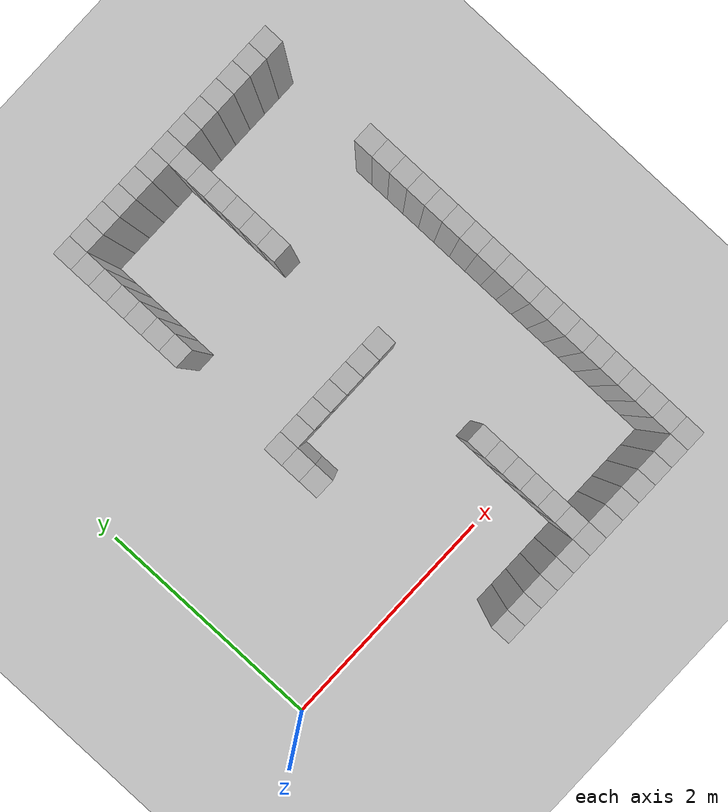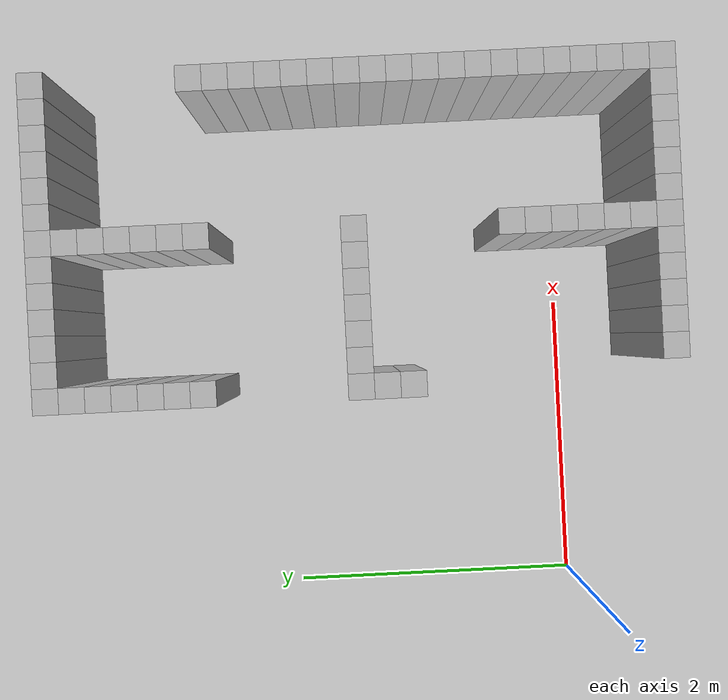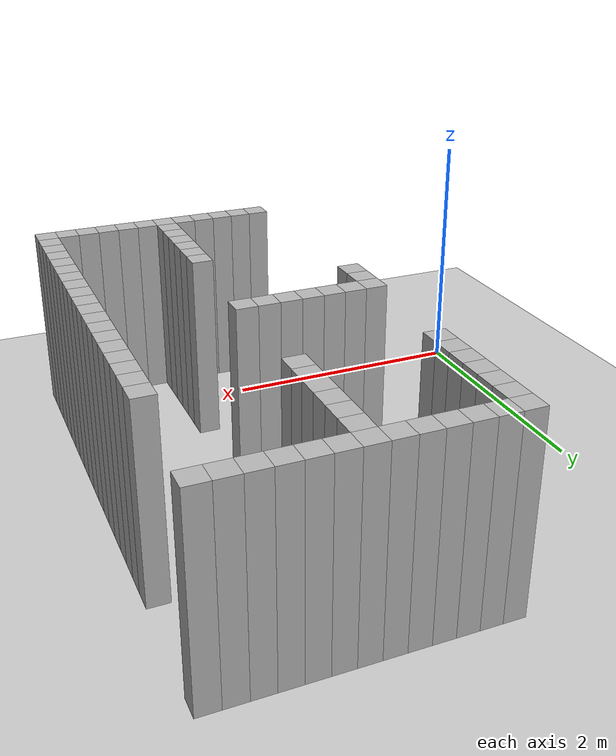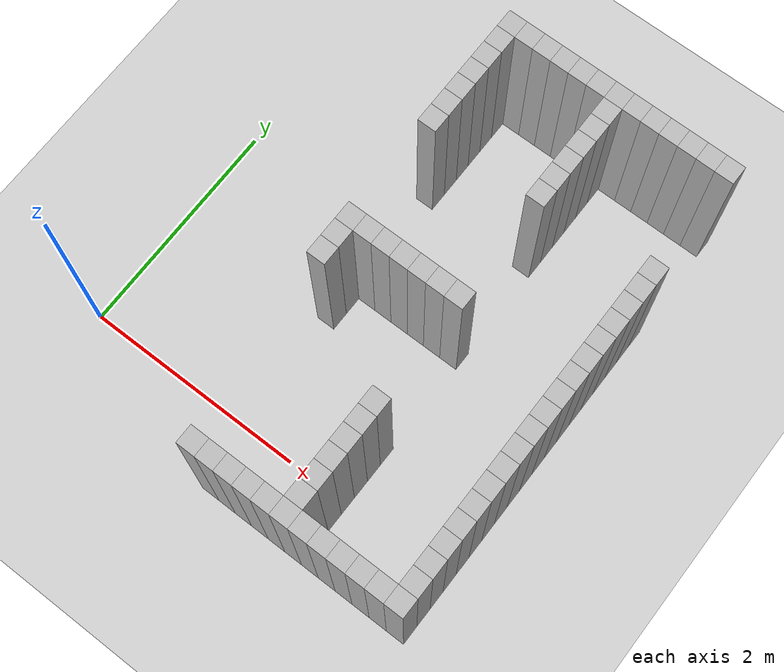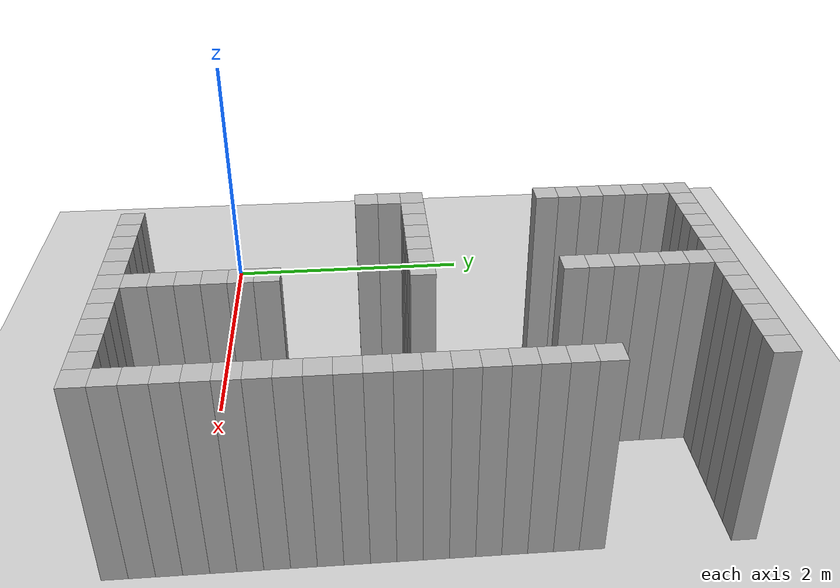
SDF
<sdf version="1.6">
 <world name="default">
  <include><uri>model://sun</uri></include>
  <include><uri>model://ground_plane</uri></include>
  <model name="Maze">
   <pose>-0.75 -0.75 0 0 0 0 0</pose>
   <link name="link_70">
    <pose>2.25 1.9166666666666665 0.75 0 0 0 0</pose>
    <inertial><mass>1</mass></inertial>
    <collision name="collision_70">
     <geometry><box><size>0.16666666666666666 0.16666666666666666 1.5</size></box></geometry>
    </collision>
    <visual name="visual_70">
     <geometry><box><size>0.16666666666666666 0.16666666666666666 1.5</size></box></geometry>
    </visual>
   </link>
   <link name="link_71">
    <pose>2.25 2.0833333333333335 0.75 0 0 0 0</pose>
    <inertial><mass>1</mass></inertial>
    <collision name="collision_71">
     <geometry><box><size>0.16666666666666666 0.16666666666666666 1.5</size></box></geometry>
    </collision>
    <visual name="visual_71">
     <geometry><box><size>0.16666666666666666 0.16666666666666666 1.5</size></box></geometry>
    </visual>
   </link>
   <link name="link_72">
    <pose>2.25 2.25 0.75 0 0 0 0</pose>
    <inertial><mass>1</mass></inertial>
    <collision name="collision_72">
     <geometry><box><size>0.16666666666666666 0.16666666666666666 1.5</size></box></geometry>
    </collision>
    <visual name="visual_72">
     <geometry><box><size>0.16666666666666666 0.16666666666666666 1.5</size></box></geometry>
    </visual>
   </link>
   <link name="link_73">
    <pose>2.25 3.25 0.75 0 0 0 0</pose>
    <inertial><mass>1</mass></inertial>
    <collision name="collision_73">
     <geometry><box><size>0.16666666666666666 0.16666666666666666 1.5</size></box></geometry>
    </collision>
    <visual name="visual_73">
     <geometry><box><size>0.16666666666666666 0.16666666666666666 1.5</size></box></geometry>
    </visual>
   </link>
   <link name="link_74">
    <pose>2.25 3.4166666666666665 0.75 0 0 0 0</pose>
    <inertial><mass>1</mass></inertial>
    <collision name="collision_74">
     <geometry><box><size>0.16666666666666666 0.16666666666666666 1.5</size></box></geometry>
    </collision>
    <visual name="visual_74">
     <geometry><box><size>0.16666666666666666 0.16666666666666666 1.5</size></box></geometry>
    </visual>
   </link>
   <link name="link_75">
    <pose>2.25 3.5833333333333335 0.75 0 0 0 0</pose>
    <inertial><mass>1</mass></inertial>
    <collision name="collision_75">
     <geometry><box><size>0.16666666666666666 0.16666666666666666 1.5</size></box></geometry>
    </collision>
    <visual name="visual_75">
     <geometry><box><size>0.16666666666666666 0.16666666666666666 1.5</size></box></geometry>
    </visual>
   </link>
   <link name="link_76">
    <pose>2.25 3.75 0.75 0 0 0 0</pose>
    <inertial><mass>1</mass></inertial>
    <collision name="collision_76">
     <geometry><box><size>0.16666666666666666 0.16666666666666666 1.5</size></box></geometry>
    </collision>
    <visual name="visual_76">
     <geometry><box><size>0.16666666666666666 0.16666666666666666 1.5</size></box></geometry>
    </visual>
   </link>
   <link name="link_77">
    <pose>2.25 3.9166666666666665 0.75 0 0 0 0</pose>
    <inertial><mass>1</mass></inertial>
    <collision name="collision_77">
     <geometry><box><size>0.16666666666666666 0.16666666666666666 1.5</size></box></geometry>
    </collision>
    <visual name="visual_77">
     <geometry><box><size>0.16666666666666666 0.16666666666666666 1.5</size></box></geometry>
    </visual>
   </link>
   <link name="link_78">
    <pose>2.25 4.083333333333333 0.75 0 0 0 0</pose>
    <inertial><mass>1</mass></inertial>
    <collision name="collision_78">
     <geometry><box><size>0.16666666666666666 0.16666666666666666 1.5</size></box></geometry>
    </collision>
    <visual name="visual_78">
     <geometry><box><size>0.16666666666666666 0.16666666666666666 1.5</size></box></geometry>
    </visual>
   </link>
   <link name="link_79">
    <pose>2.25 4.249999999999999 0.75 0 0 0 0</pose>
    <inertial><mass>1</mass></inertial>
    <collision name="collision_79">
     <geometry><box><size>0.16666666666666666 0.16666666666666666 1.5</size></box></geometry>
    </collision>
    <visual name="visual_79">
     <geometry><box><size>0.16666666666666666 0.16666666666666666 1.5</size></box></geometry>
    </visual>
   </link>
   <link name="link_80">
    <pose>2.4166666666666665 0.25 0.75 0 0 0 0</pose>
    <inertial><mass>1</mass></inertial>
    <collision name="collision_80">
     <geometry><box><size>0.16666666666666666 0.16666666666666666 1.5</size></box></geometry>
    </collision>
    <visual name="visual_80">
     <geometry><box><size>0.16666666666666666 0.16666666666666666 1.5</size></box></geometry>
    </visual>
   </link>
   <link name="link_81">
    <pose>2.4166666666666665 2.25 0.75 0 0 0 0</pose>
    <inertial><mass>1</mass></inertial>
    <collision name="collision_81">
     <geometry><box><size>0.16666666666666666 0.16666666666666666 1.5</size></box></geometry>
    </collision>
    <visual name="visual_81">
     <geometry><box><size>0.16666666666666666 0.16666666666666666 1.5</size></box></geometry>
    </visual>
   </link>
   <link name="link_82">
    <pose>2.4166666666666665 4.249999999999999 0.75 0 0 0 0</pose>
    <inertial><mass>1</mass></inertial>
    <collision name="collision_82">
     <geometry><box><size>0.16666666666666666 0.16666666666666666 1.5</size></box></geometry>
    </collision>
    <visual name="visual_82">
     <geometry><box><size>0.16666666666666666 0.16666666666666666 1.5</size></box></geometry>
    </visual>
   </link>
   <link name="link_83">
    <pose>2.5833333333333335 0.25 0.75 0 0 0 0</pose>
    <inertial><mass>1</mass></inertial>
    <collision name="collision_83">
     <geometry><box><size>0.16666666666666666 0.16666666666666666 1.5</size></box></geometry>
    </collision>
    <visual name="visual_83">
     <geometry><box><size>0.16666666666666666 0.16666666666666666 1.5</size></box></geometry>
    </visual>
   </link>
   <link name="link_84">
    <pose>2.5833333333333335 2.25 0.75 0 0 0 0</pose>
    <inertial><mass>1</mass></inertial>
    <collision name="collision_84">
     <geometry><box><size>0.16666666666666666 0.16666666666666666 1.5</size></box></geometry>
    </collision>
    <visual name="visual_84">
     <geometry><box><size>0.16666666666666666 0.16666666666666666 1.5</size></box></geometry>
    </visual>
   </link>
   <link name="link_85">
    <pose>2.5833333333333335 4.249999999999999 0.75 0 0 0 0</pose>
    <inertial><mass>1</mass></inertial>
    <collision name="collision_85">
     <geometry><box><size>0.16666666666666666 0.16666666666666666 1.5</size></box></geometry>
    </collision>
    <visual name="visual_85">
     <geometry><box><size>0.16666666666666666 0.16666666666666666 1.5</size></box></geometry>
    </visual>
   </link>
   <link name="link_86">
    <pose>2.75 0.25 0.75 0 0 0 0</pose>
    <inertial><mass>1</mass></inertial>
    <collision name="collision_86">
     <geometry><box><size>0.16666666666666666 0.16666666666666666 1.5</size></box></geometry>
    </collision>
    <visual name="visual_86">
     <geometry><box><size>0.16666666666666666 0.16666666666666666 1.5</size></box></geometry>
    </visual>
   </link>
   <link name="link_87">
    <pose>2.75 2.25 0.75 0 0 0 0</pose>
    <inertial><mass>1</mass></inertial>
    <collision name="collision_87">
     <geometry><box><size>0.16666666666666666 0.16666666666666666 1.5</size></box></geometry>
    </collision>
    <visual name="visual_87">
     <geometry><box><size>0.16666666666666666 0.16666666666666666 1.5</size></box></geometry>
    </visual>
   </link>
   <link name="link_88">
    <pose>2.75 4.249999999999999 0.75 0 0 0 0</pose>
    <inertial><mass>1</mass></inertial>
    <collision name="collision_88">
     <geometry><box><size>0.16666666666666666 0.16666666666666666 1.5</size></box></geometry>
    </collision>
    <visual name="visual_88">
     <geometry><box><size>0.16666666666666666 0.16666666666666666 1.5</size></box></geometry>
    </visual>
   </link>
   <link name="link_89">
    <pose>2.9166666666666665 0.25 0.75 0 0 0 0</pose>
    <inertial><mass>1</mass></inertial>
    <collision name="collision_89">
     <geometry><box><size>0.16666666666666666 0.16666666666666666 1.5</size></box></geometry>
    </collision>
    <visual name="visual_89">
     <geometry><box><size>0.16666666666666666 0.16666666666666666 1.5</size></box></geometry>
    </visual>
   </link>
   <link name="link_90">
    <pose>2.9166666666666665 2.25 0.75 0 0 0 0</pose>
    <inertial><mass>1</mass></inertial>
    <collision name="collision_90">
     <geometry><box><size>0.16666666666666666 0.16666666666666666 1.5</size></box></geometry>
    </collision>
    <visual name="visual_90">
     <geometry><box><size>0.16666666666666666 0.16666666666666666 1.5</size></box></geometry>
    </visual>
   </link>
   <link name="link_91">
    <pose>2.9166666666666665 4.249999999999999 0.75 0 0 0 0</pose>
    <inertial><mass>1</mass></inertial>
    <collision name="collision_91">
     <geometry><box><size>0.16666666666666666 0.16666666666666666 1.5</size></box></geometry>
    </collision>
    <visual name="visual_91">
     <geometry><box><size>0.16666666666666666 0.16666666666666666 1.5</size></box></geometry>
    </visual>
   </link>
   <link name="link_92">
    <pose>3.0833333333333335 0.25 0.75 0 0 0 0</pose>
    <inertial><mass>1</mass></inertial>
    <collision name="collision_92">
     <geometry><box><size>0.16666666666666666 0.16666666666666666 1.5</size></box></geometry>
    </collision>
    <visual name="visual_92">
     <geometry><box><size>0.16666666666666666 0.16666666666666666 1.5</size></box></geometry>
    </visual>
   </link>
   <link name="link_93">
    <pose>3.0833333333333335 2.25 0.75 0 0 0 0</pose>
    <inertial><mass>1</mass></inertial>
    <collision name="collision_93">
     <geometry><box><size>0.16666666666666666 0.16666666666666666 1.5</size></box></geometry>
    </collision>
    <visual name="visual_93">
     <geometry><box><size>0.16666666666666666 0.16666666666666666 1.5</size></box></geometry>
    </visual>
   </link>
   <link name="link_94">
    <pose>3.0833333333333335 4.249999999999999 0.75 0 0 0 0</pose>
    <inertial><mass>1</mass></inertial>
    <collision name="collision_94">
     <geometry><box><size>0.16666666666666666 0.16666666666666666 1.5</size></box></geometry>
    </collision>
    <visual name="visual_94">
     <geometry><box><size>0.16666666666666666 0.16666666666666666 1.5</size></box></geometry>
    </visual>
   </link>
   <link name="link_95">
    <pose>3.25 0.25 0.75 0 0 0 0</pose>
    <inertial><mass>1</mass></inertial>
    <collision name="collision_95">
     <geometry><box><size>0.16666666666666666 0.16666666666666666 1.5</size></box></geometry>
    </collision>
    <visual name="visual_95">
     <geometry><box><size>0.16666666666666666 0.16666666666666666 1.5</size></box></geometry>
    </visual>
   </link>
   <link name="link_96">
    <pose>3.25 0.41666666666666663 0.75 0 0 0 0</pose>
    <inertial><mass>1</mass></inertial>
    <collision name="collision_96">
     <geometry><box><size>0.16666666666666666 0.16666666666666666 1.5</size></box></geometry>
    </collision>
    <visual name="visual_96">
     <geometry><box><size>0.16666666666666666 0.16666666666666666 1.5</size></box></geometry>
    </visual>
   </link>
   <link name="link_97">
    <pose>3.25 0.5833333333333334 0.75 0 0 0 0</pose>
    <inertial><mass>1</mass></inertial>
    <collision name="collision_97">
     <geometry><box><size>0.16666666666666666 0.16666666666666666 1.5</size></box></geometry>
    </collision>
    <visual name="visual_97">
     <geometry><box><size>0.16666666666666666 0.16666666666666666 1.5</size></box></geometry>
    </visual>
   </link>
   <link name="link_98">
    <pose>3.25 0.75 0.75 0 0 0 0</pose>
    <inertial><mass>1</mass></inertial>
    <collision name="collision_98">
     <geometry><box><size>0.16666666666666666 0.16666666666666666 1.5</size></box></geometry>
    </collision>
    <visual name="visual_98">
     <geometry><box><size>0.16666666666666666 0.16666666666666666 1.5</size></box></geometry>
    </visual>
   </link>
   <link name="link_99">
    <pose>3.25 0.9166666666666666 0.75 0 0 0 0</pose>
    <inertial><mass>1</mass></inertial>
    <collision name="collision_99">
     <geometry><box><size>0.16666666666666666 0.16666666666666666 1.5</size></box></geometry>
    </collision>
    <visual name="visual_99">
     <geometry><box><size>0.16666666666666666 0.16666666666666666 1.5</size></box></geometry>
    </visual>
   </link>
   <link name="link_100">
    <pose>3.25 1.0833333333333333 0.75 0 0 0 0</pose>
    <inertial><mass>1</mass></inertial>
    <collision name="collision_100">
     <geometry><box><size>0.16666666666666666 0.16666666666666666 1.5</size></box></geometry>
    </collision>
    <visual name="visual_100">
     <geometry><box><size>0.16666666666666666 0.16666666666666666 1.5</size></box></geometry>
    </visual>
   </link>
   <link name="link_101">
    <pose>3.25 1.2499999999999998 0.75 0 0 0 0</pose>
    <inertial><mass>1</mass></inertial>
    <collision name="collision_101">
     <geometry><box><size>0.16666666666666666 0.16666666666666666 1.5</size></box></geometry>
    </collision>
    <visual name="visual_101">
     <geometry><box><size>0.16666666666666666 0.16666666666666666 1.5</size></box></geometry>
    </visual>
   </link>
   <link name="link_102">
    <pose>3.25 2.25 0.75 0 0 0 0</pose>
    <inertial><mass>1</mass></inertial>
    <collision name="collision_102">
     <geometry><box><size>0.16666666666666666 0.16666666666666666 1.5</size></box></geometry>
    </collision>
    <visual name="visual_102">
     <geometry><box><size>0.16666666666666666 0.16666666666666666 1.5</size></box></geometry>
    </visual>
   </link>
   <link name="link_103">
    <pose>3.25 3.25 0.75 0 0 0 0</pose>
    <inertial><mass>1</mass></inertial>
    <collision name="collision_103">
     <geometry><box><size>0.16666666666666666 0.16666666666666666 1.5</size></box></geometry>
    </collision>
    <visual name="visual_103">
     <geometry><box><size>0.16666666666666666 0.16666666666666666 1.5</size></box></geometry>
    </visual>
   </link>
   <link name="link_104">
    <pose>3.25 3.4166666666666665 0.75 0 0 0 0</pose>
    <inertial><mass>1</mass></inertial>
    <collision name="collision_104">
     <geometry><box><size>0.16666666666666666 0.16666666666666666 1.5</size></box></geometry>
    </collision>
    <visual name="visual_104">
     <geometry><box><size>0.16666666666666666 0.16666666666666666 1.5</size></box></geometry>
    </visual>
   </link>
   <link name="link_105">
    <pose>3.25 3.5833333333333335 0.75 0 0 0 0</pose>
    <inertial><mass>1</mass></inertial>
    <collision name="collision_105">
     <geometry><box><size>0.16666666666666666 0.16666666666666666 1.5</size></box></geometry>
    </collision>
    <visual name="visual_105">
     <geometry><box><size>0.16666666666666666 0.16666666666666666 1.5</size></box></geometry>
    </visual>
   </link>
   <link name="link_106">
    <pose>3.25 3.75 0.75 0 0 0 0</pose>
    <inertial><mass>1</mass></inertial>
    <collision name="collision_106">
     <geometry><box><size>0.16666666666666666 0.16666666666666666 1.5</size></box></geometry>
    </collision>
    <visual name="visual_106">
     <geometry><box><size>0.16666666666666666 0.16666666666666666 1.5</size></box></geometry>
    </visual>
   </link>
   <link name="link_107">
    <pose>3.25 3.9166666666666665 0.75 0 0 0 0</pose>
    <inertial><mass>1</mass></inertial>
    <collision name="collision_107">
     <geometry><box><size>0.16666666666666666 0.16666666666666666 1.5</size></box></geometry>
    </collision>
    <visual name="visual_107">
     <geometry><box><size>0.16666666666666666 0.16666666666666666 1.5</size></box></geometry>
    </visual>
   </link>
   <link name="link_108">
    <pose>3.25 4.083333333333333 0.75 0 0 0 0</pose>
    <inertial><mass>1</mass></inertial>
    <collision name="collision_108">
     <geometry><box><size>0.16666666666666666 0.16666666666666666 1.5</size></box></geometry>
    </collision>
    <visual name="visual_108">
     <geometry><box><size>0.16666666666666666 0.16666666666666666 1.5</size></box></geometry>
    </visual>
   </link>
   <link name="link_109">
    <pose>3.25 4.249999999999999 0.75 0 0 0 0</pose>
    <inertial><mass>1</mass></inertial>
    <collision name="collision_109">
     <geometry><box><size>0.16666666666666666 0.16666666666666666 1.5</size></box></geometry>
    </collision>
    <visual name="visual_109">
     <geometry><box><size>0.16666666666666666 0.16666666666666666 1.5</size></box></geometry>
    </visual>
   </link>
   <link name="link_110">
    <pose>3.4166666666666665 0.25 0.75 0 0 0 0</pose>
    <inertial><mass>1</mass></inertial>
    <collision name="collision_110">
     <geometry><box><size>0.16666666666666666 0.16666666666666666 1.5</size></box></geometry>
    </collision>
    <visual name="visual_110">
     <geometry><box><size>0.16666666666666666 0.16666666666666666 1.5</size></box></geometry>
    </visual>
   </link>
   <link name="link_111">
    <pose>3.4166666666666665 4.249999999999999 0.75 0 0 0 0</pose>
    <inertial><mass>1</mass></inertial>
    <collision name="collision_111">
     <geometry><box><size>0.16666666666666666 0.16666666666666666 1.5</size></box></geometry>
    </collision>
    <visual name="visual_111">
     <geometry><box><size>0.16666666666666666 0.16666666666666666 1.5</size></box></geometry>
    </visual>
   </link>
   <link name="link_112">
    <pose>3.5833333333333335 0.25 0.75 0 0 0 0</pose>
    <inertial><mass>1</mass></inertial>
    <collision name="collision_112">
     <geometry><box><size>0.16666666666666666 0.16666666666666666 1.5</size></box></geometry>
    </collision>
    <visual name="visual_112">
     <geometry><box><size>0.16666666666666666 0.16666666666666666 1.5</size></box></geometry>
    </visual>
   </link>
   <link name="link_113">
    <pose>3.5833333333333335 4.249999999999999 0.75 0 0 0 0</pose>
    <inertial><mass>1</mass></inertial>
    <collision name="collision_113">
     <geometry><box><size>0.16666666666666666 0.16666666666666666 1.5</size></box></geometry>
    </collision>
    <visual name="visual_113">
     <geometry><box><size>0.16666666666666666 0.16666666666666666 1.5</size></box></geometry>
    </visual>
   </link>
   <link name="link_114">
    <pose>3.75 0.25 0.75 0 0 0 0</pose>
    <inertial><mass>1</mass></inertial>
    <collision name="collision_114">
     <geometry><box><size>0.16666666666666666 0.16666666666666666 1.5</size></box></geometry>
    </collision>
    <visual name="visual_114">
     <geometry><box><size>0.16666666666666666 0.16666666666666666 1.5</size></box></geometry>
    </visual>
   </link>
   <link name="link_115">
    <pose>3.75 4.249999999999999 0.75 0 0 0 0</pose>
    <inertial><mass>1</mass></inertial>
    <collision name="collision_115">
     <geometry><box><size>0.16666666666666666 0.16666666666666666 1.5</size></box></geometry>
    </collision>
    <visual name="visual_115">
     <geometry><box><size>0.16666666666666666 0.16666666666666666 1.5</size></box></geometry>
    </visual>
   </link>
   <link name="link_116">
    <pose>3.9166666666666665 0.25 0.75 0 0 0 0</pose>
    <inertial><mass>1</mass></inertial>
    <collision name="collision_116">
     <geometry><box><size>0.16666666666666666 0.16666666666666666 1.5</size></box></geometry>
    </collision>
    <visual name="visual_116">
     <geometry><box><size>0.16666666666666666 0.16666666666666666 1.5</size></box></geometry>
    </visual>
   </link>
   <link name="link_117">
    <pose>3.9166666666666665 4.249999999999999 0.75 0 0 0 0</pose>
    <inertial><mass>1</mass></inertial>
    <collision name="collision_117">
     <geometry><box><size>0.16666666666666666 0.16666666666666666 1.5</size></box></geometry>
    </collision>
    <visual name="visual_117">
     <geometry><box><size>0.16666666666666666 0.16666666666666666 1.5</size></box></geometry>
    </visual>
   </link>
   <link name="link_118">
    <pose>4.083333333333333 0.25 0.75 0 0 0 0</pose>
    <inertial><mass>1</mass></inertial>
    <collision name="collision_118">
     <geometry><box><size>0.16666666666666666 0.16666666666666666 1.5</size></box></geometry>
    </collision>
    <visual name="visual_118">
     <geometry><box><size>0.16666666666666666 0.16666666666666666 1.5</size></box></geometry>
    </visual>
   </link>
   <link name="link_119">
    <pose>4.083333333333333 4.249999999999999 0.75 0 0 0 0</pose>
    <inertial><mass>1</mass></inertial>
    <collision name="collision_119">
     <geometry><box><size>0.16666666666666666 0.16666666666666666 1.5</size></box></geometry>
    </collision>
    <visual name="visual_119">
     <geometry><box><size>0.16666666666666666 0.16666666666666666 1.5</size></box></geometry>
    </visual>
   </link>
   <link name="link_120">
    <pose>4.249999999999999 0.25 0.75 0 0 0 0</pose>
    <inertial><mass>1</mass></inertial>
    <collision name="collision_120">
     <geometry><box><size>0.16666666666666666 0.16666666666666666 1.5</size></box></geometry>
    </collision>
    <visual name="visual_120">
     <geometry><box><size>0.16666666666666666 0.16666666666666666 1.5</size></box></geometry>
    </visual>
   </link>
   <link name="link_121">
    <pose>4.249999999999999 0.41666666666666663 0.75 0 0 0 0</pose>
    <inertial><mass>1</mass></inertial>
    <collision name="collision_121">
     <geometry><box><size>0.16666666666666666 0.16666666666666666 1.5</size></box></geometry>
    </collision>
    <visual name="visual_121">
     <geometry><box><size>0.16666666666666666 0.16666666666666666 1.5</size></box></geometry>
    </visual>
   </link>
   <link name="link_122">
    <pose>4.249999999999999 0.5833333333333334 0.75 0 0 0 0</pose>
    <inertial><mass>1</mass></inertial>
    <collision name="collision_122">
     <geometry><box><size>0.16666666666666666 0.16666666666666666 1.5</size></box></geometry>
    </collision>
    <visual name="visual_122">
     <geometry><box><size>0.16666666666666666 0.16666666666666666 1.5</size></box></geometry>
    </visual>
   </link>
   <link name="link_123">
    <pose>4.249999999999999 0.75 0.75 0 0 0 0</pose>
    <inertial><mass>1</mass></inertial>
    <collision name="collision_123">
     <geometry><box><size>0.16666666666666666 0.16666666666666666 1.5</size></box></geometry>
    </collision>
    <visual name="visual_123">
     <geometry><box><size>0.16666666666666666 0.16666666666666666 1.5</size></box></geometry>
    </visual>
   </link>
   <link name="link_124">
    <pose>4.249999999999999 0.9166666666666666 0.75 0 0 0 0</pose>
    <inertial><mass>1</mass></inertial>
    <collision name="collision_124">
     <geometry><box><size>0.16666666666666666 0.16666666666666666 1.5</size></box></geometry>
    </collision>
    <visual name="visual_124">
     <geometry><box><size>0.16666666666666666 0.16666666666666666 1.5</size></box></geometry>
    </visual>
   </link>
   <link name="link_125">
    <pose>4.249999999999999 1.0833333333333333 0.75 0 0 0 0</pose>
    <inertial><mass>1</mass></inertial>
    <collision name="collision_125">
     <geometry><box><size>0.16666666666666666 0.16666666666666666 1.5</size></box></geometry>
    </collision>
    <visual name="visual_125">
     <geometry><box><size>0.16666666666666666 0.16666666666666666 1.5</size></box></geometry>
    </visual>
   </link>
   <link name="link_126">
    <pose>4.249999999999999 1.2499999999999998 0.75 0 0 0 0</pose>
    <inertial><mass>1</mass></inertial>
    <collision name="collision_126">
     <geometry><box><size>0.16666666666666666 0.16666666666666666 1.5</size></box></geometry>
    </collision>
    <visual name="visual_126">
     <geometry><box><size>0.16666666666666666 0.16666666666666666 1.5</size></box></geometry>
    </visual>
   </link>
   <link name="link_127">
    <pose>4.249999999999999 1.4166666666666665 0.75 0 0 0 0</pose>
    <inertial><mass>1</mass></inertial>
    <collision name="collision_127">
     <geometry><box><size>0.16666666666666666 0.16666666666666666 1.5</size></box></geometry>
    </collision>
    <visual name="visual_127">
     <geometry><box><size>0.16666666666666666 0.16666666666666666 1.5</size></box></geometry>
    </visual>
   </link>
   <link name="link_128">
    <pose>4.249999999999999 1.5833333333333333 0.75 0 0 0 0</pose>
    <inertial><mass>1</mass></inertial>
    <collision name="collision_128">
     <geometry><box><size>0.16666666666666666 0.16666666666666666 1.5</size></box></geometry>
    </collision>
    <visual name="visual_128">
     <geometry><box><size>0.16666666666666666 0.16666666666666666 1.5</size></box></geometry>
    </visual>
   </link>
   <link name="link_129">
    <pose>4.249999999999999 1.7499999999999998 0.75 0 0 0 0</pose>
    <inertial><mass>1</mass></inertial>
    <collision name="collision_129">
     <geometry><box><size>0.16666666666666666 0.16666666666666666 1.5</size></box></geometry>
    </collision>
    <visual name="visual_129">
     <geometry><box><size>0.16666666666666666 0.16666666666666666 1.5</size></box></geometry>
    </visual>
   </link>
   <link name="link_130">
    <pose>4.249999999999999 1.9166666666666665 0.75 0 0 0 0</pose>
    <inertial><mass>1</mass></inertial>
    <collision name="collision_130">
     <geometry><box><size>0.16666666666666666 0.16666666666666666 1.5</size></box></geometry>
    </collision>
    <visual name="visual_130">
     <geometry><box><size>0.16666666666666666 0.16666666666666666 1.5</size></box></geometry>
    </visual>
   </link>
   <link name="link_131">
    <pose>4.249999999999999 2.0833333333333335 0.75 0 0 0 0</pose>
    <inertial><mass>1</mass></inertial>
    <collision name="collision_131">
     <geometry><box><size>0.16666666666666666 0.16666666666666666 1.5</size></box></geometry>
    </collision>
    <visual name="visual_131">
     <geometry><box><size>0.16666666666666666 0.16666666666666666 1.5</size></box></geometry>
    </visual>
   </link>
   <link name="link_132">
    <pose>4.249999999999999 2.25 0.75 0 0 0 0</pose>
    <inertial><mass>1</mass></inertial>
    <collision name="collision_132">
     <geometry><box><size>0.16666666666666666 0.16666666666666666 1.5</size></box></geometry>
    </collision>
    <visual name="visual_132">
     <geometry><box><size>0.16666666666666666 0.16666666666666666 1.5</size></box></geometry>
    </visual>
   </link>
   <link name="link_133">
    <pose>4.249999999999999 2.4166666666666665 0.75 0 0 0 0</pose>
    <inertial><mass>1</mass></inertial>
    <collision name="collision_133">
     <geometry><box><size>0.16666666666666666 0.16666666666666666 1.5</size></box></geometry>
    </collision>
    <visual name="visual_133">
     <geometry><box><size>0.16666666666666666 0.16666666666666666 1.5</size></box></geometry>
    </visual>
   </link>
   <link name="link_134">
    <pose>4.249999999999999 2.5833333333333335 0.75 0 0 0 0</pose>
    <inertial><mass>1</mass></inertial>
    <collision name="collision_134">
     <geometry><box><size>0.16666666666666666 0.16666666666666666 1.5</size></box></geometry>
    </collision>
    <visual name="visual_134">
     <geometry><box><size>0.16666666666666666 0.16666666666666666 1.5</size></box></geometry>
    </visual>
   </link>
   <link name="link_135">
    <pose>4.249999999999999 2.75 0.75 0 0 0 0</pose>
    <inertial><mass>1</mass></inertial>
    <collision name="collision_135">
     <geometry><box><size>0.16666666666666666 0.16666666666666666 1.5</size></box></geometry>
    </collision>
    <visual name="visual_135">
     <geometry><box><size>0.16666666666666666 0.16666666666666666 1.5</size></box></geometry>
    </visual>
   </link>
   <link name="link_136">
    <pose>4.249999999999999 2.9166666666666665 0.75 0 0 0 0</pose>
    <inertial><mass>1</mass></inertial>
    <collision name="collision_136">
     <geometry><box><size>0.16666666666666666 0.16666666666666666 1.5</size></box></geometry>
    </collision>
    <visual name="visual_136">
     <geometry><box><size>0.16666666666666666 0.16666666666666666 1.5</size></box></geometry>
    </visual>
   </link>
   <link name="link_137">
    <pose>4.249999999999999 3.0833333333333335 0.75 0 0 0 0</pose>
    <inertial><mass>1</mass></inertial>
    <collision name="collision_137">
     <geometry><box><size>0.16666666666666666 0.16666666666666666 1.5</size></box></geometry>
    </collision>
    <visual name="visual_137">
     <geometry><box><size>0.16666666666666666 0.16666666666666666 1.5</size></box></geometry>
    </visual>
   </link>
   <link name="link_138">
    <pose>4.249999999999999 3.25 0.75 0 0 0 0</pose>
    <inertial><mass>1</mass></inertial>
    <collision name="collision_138">
     <geometry><box><size>0.16666666666666666 0.16666666666666666 1.5</size></box></geometry>
    </collision>
    <visual name="visual_138">
     <geometry><box><size>0.16666666666666666 0.16666666666666666 1.5</size></box></geometry>
    </visual>
   </link>
   <link name="link_139">
    <pose>4.249999999999999 4.249999999999999 0.75 0 0 0 0</pose>
    <inertial><mass>1</mass></inertial>
    <collision name="collision_139">
     <geometry><box><size>0.16666666666666666 0.16666666666666666 1.5</size></box></geometry>
    </collision>
    <visual name="visual_139">
     <geometry><box><size>0.16666666666666666 0.16666666666666666 1.5</size></box></geometry>
    </visual>
   </link>
  </model>
 </world>
</sdf>
